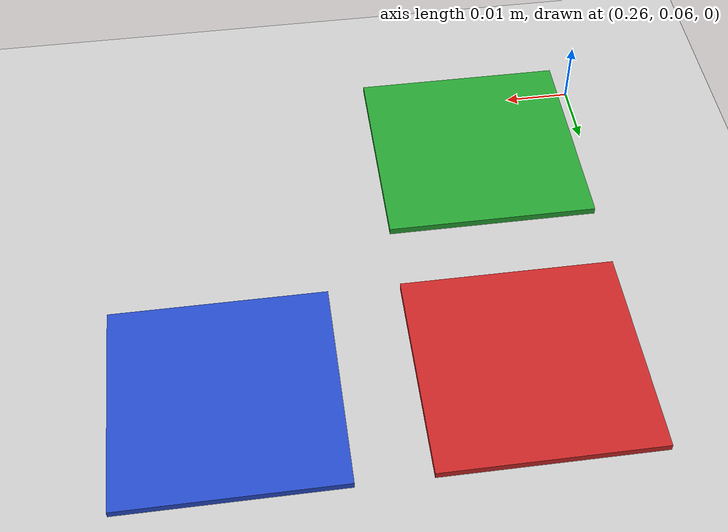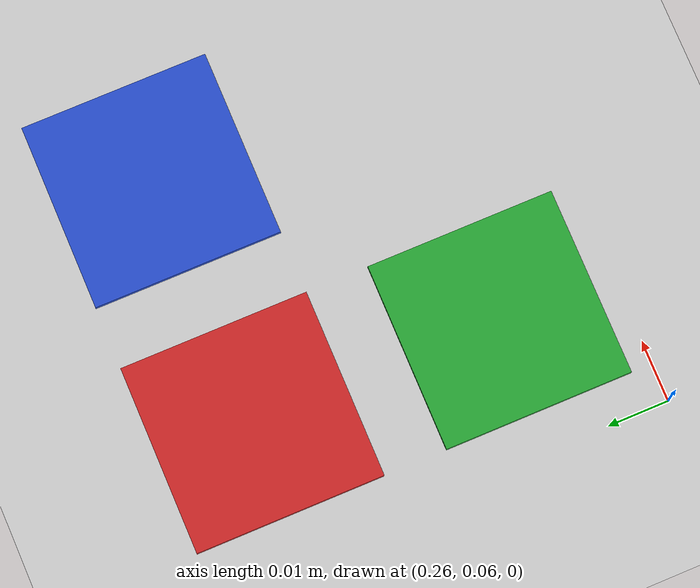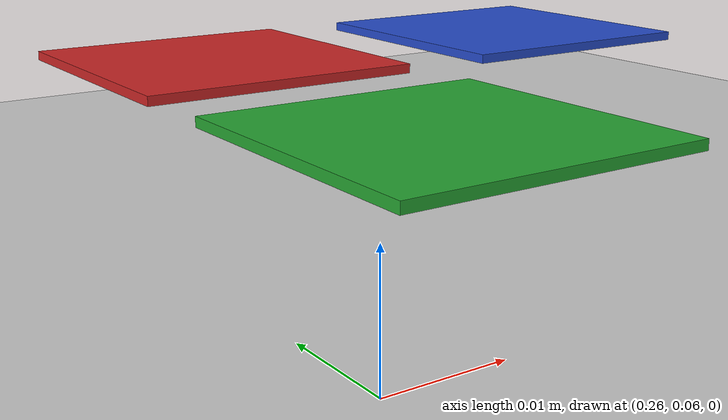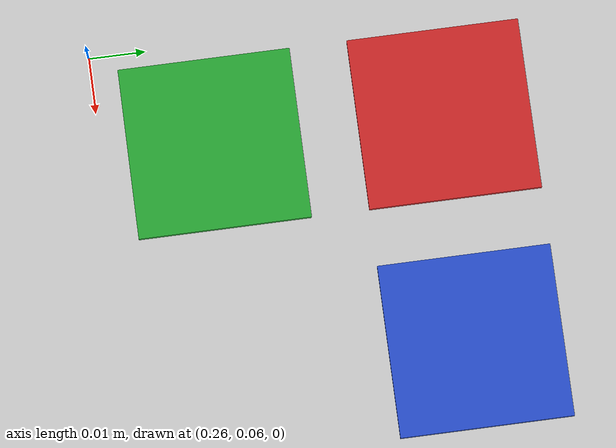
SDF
<?xml version='1.0' ?>
<sdf version='1.6'>
  <world name='default'>

    <!-- A global light source -->
    <include>
      <uri>model://sun</uri>
    </include>

    <!-- A ground plane -->
    <include>
      <uri>model://ground_plane</uri>
    </include>

    <!-- Physics settings for simulation -->

    <physics type='ode'>
      <max_step_size>0.001</max_step_size>
      <real_time_factor>1</real_time_factor>
      <real_time_update_rate>1000</real_time_update_rate>
      <gravity>0 0 -9.81</gravity>
    </physics>

    <model name='box_model_r'>
      <static>false</static>
      <pose frame=''>0.28 0.12 0.01 0 -0 0</pose>
      <link name='box_model_r_link'>
        <inertial>
          <mass>0.1467</mass>
          <inertia>
            <ixx>8.25187e-05</ixx>
            <ixy>0</ixy>
            <ixz>0</ixz>
            <iyy>8.25187e-05</iyy>
            <iyz>0</iyz>
            <izz>8.25187e-05</izz>
          </inertia>
        </inertial>
        <collision name='collision'>
          <geometry>
            <box>
              <size>0.030 0.030 0.001</size>
            </box>
          </geometry>
          <max_contacts>10</max_contacts>
          <surface>
            <contact>
              <poissons_ratio>0.347</poissons_ratio>
              <elastic_modulus>8.8e+09</elastic_modulus>

            </contact>
            <friction>
              <torsional>
                <coefficient>1</coefficient>
                <use_patch_radius>0</use_patch_radius>
                <surface_radius>0.01</surface_radius>
                <ode/>
              </torsional>
              <ode/>
            </friction>
            <bounce/>
          </surface>
        </collision>
        <visual name='visual'>
          <geometry>
            <box>
              <size>0.030 0.030 0.001</size>
            </box>
          </geometry>
          <material>
            <script>
              <name>Gazebo/Red</name>
              <uri>file://media/materials/scripts/gazebo.material</uri>
            </script>
          </material>
        </visual>
        <velocity_decay>
          <linear>0</linear>
          <angular>0.005</angular>
        </velocity_decay>
        <self_collide>0</self_collide>
        <kinematic>0</kinematic>
      </link>
    </model>

    <model name='box_model_g'>
      <static>false</static>
      <pose frame=''>0.28 0.08 0.01 0 -0 0</pose>
      <link name='box_model_g_link'>
        <inertial>
          <mass>0.1467</mass>
          <inertia>
            <ixx>8.25187e-05</ixx>
            <ixy>0</ixy>
            <ixz>0</ixz>
            <iyy>8.25187e-05</iyy>
            <iyz>0</iyz>
            <izz>8.25187e-05</izz>
          </inertia>
        </inertial>
        <collision name='collision'>
          <geometry>
            <box>
              <size>0.030 0.030 0.001</size>
            </box>
          </geometry>
          <max_contacts>10</max_contacts>
          <surface>
            <contact>
              <poissons_ratio>0.347</poissons_ratio>
              <elastic_modulus>8.8e+09</elastic_modulus>
            </contact>
            <friction>
              <torsional>
                <coefficient>1</coefficient>
                <use_patch_radius>0</use_patch_radius>
                <surface_radius>0.01</surface_radius>
                <ode/>
              </torsional>
              <ode/>
            </friction>
            <bounce/>
          </surface>
        </collision>
        <visual name='visual'>
          <geometry>
            <box>
              <size>0.030 0.030 0.001</size>
            </box>
          </geometry>
          <material>
            <script>
              <name>Gazebo/Green</name>
              <uri>file://media/materials/scripts/gazebo.material</uri>
            </script>
          </material>
        </visual>
        <velocity_decay>
          <linear>0</linear>
          <angular>0.005</angular>
        </velocity_decay>
        <self_collide>0</self_collide>
        <kinematic>0</kinematic>
      </link>
    </model>

    <model name='box_model_b'>
      <static>false</static>
      <pose frame=''>0.32 0.12 0.01 0 -0 0</pose>
      <link name='box_model_b_link'>
        <inertial>
          <mass>0.1467</mass>
          <inertia>
            <ixx>8.25187e-05</ixx>
            <ixy>0</ixy>
            <ixz>0</ixz>
            <iyy>8.25187e-05</iyy>
            <iyz>0</iyz>
            <izz>8.25187e-05</izz>
          </inertia>
        </inertial>
        <collision name='collision'>
          <geometry>
            <box>
              <size>0.030 0.030 0.001</size>
            </box>
          </geometry>
          <max_contacts>10</max_contacts>
          <surface>
            <contact>
              <poissons_ratio>0.347</poissons_ratio>
              <elastic_modulus>8.8e+09</elastic_modulus>
            </contact>
            <friction>
              <torsional>
                <coefficient>1</coefficient>
                <use_patch_radius>0</use_patch_radius>
                <surface_radius>0.01</surface_radius>
                <ode/>
              </torsional>
              <ode/>
            </friction>
            <bounce/>
          </surface>
        </collision>
        <visual name='visual'>
          <geometry>
            <box>
              <size>0.030 0.030 0.001</size>
            </box>
          </geometry>
          <material>
            <script>
              <name>Gazebo/Blue</name>
              <uri>file://media/materials/scripts/gazebo.material</uri>
            </script>
          </material>
        </visual>
        <velocity_decay>
          <linear>0</linear>
          <angular>0.005</angular>
        </velocity_decay>
        <self_collide>0</self_collide>
        <kinematic>0</kinematic>
      </link>
    </model>

  </world>
</sdf>
